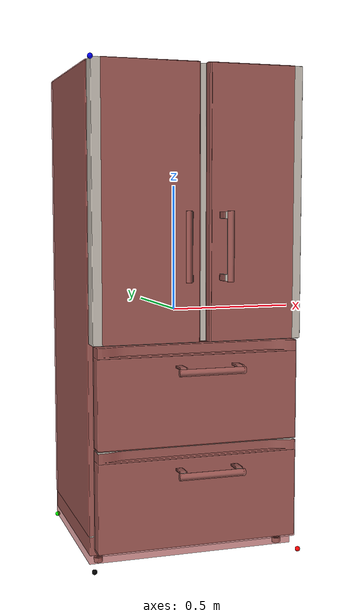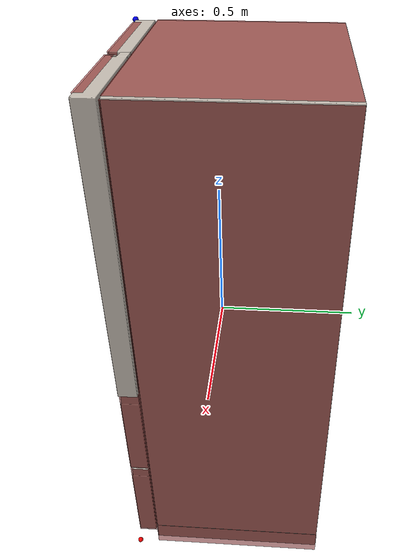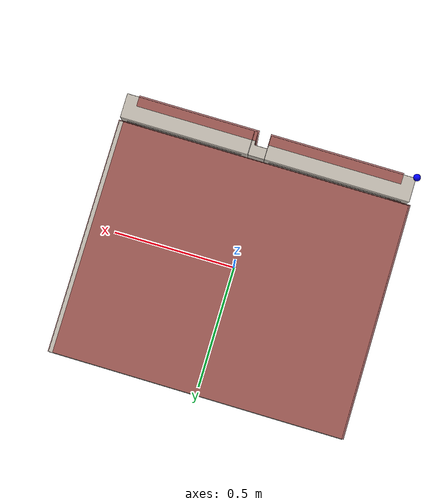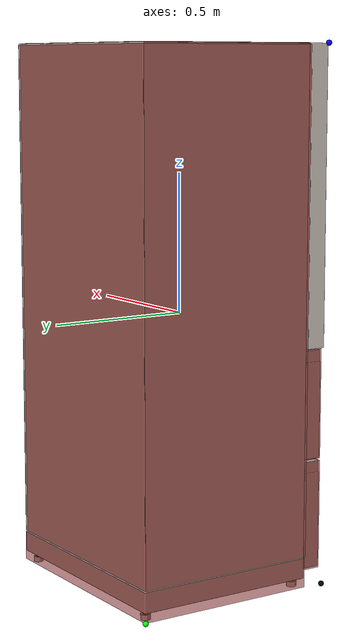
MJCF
<?xml version="1.0" ?>
<mujoco model="model">
    <compiler angle="radian"/>
    <asset>
        <mesh file="visuals/Refrigerator033_Body001.obj" name="Refrigerator033_Body001_vis"/>
        <mesh file="visuals/Refrigerator033_Body001_Clear.obj" name="Refrigerator033_Body001_Clear_vis"/>
        <mesh file="visuals/Refrigerator033_Body002.obj" name="Refrigerator033_Body002_vis"/>
        <mesh file="visuals/Refrigerator033_Door001.obj" name="Refrigerator033_Door001_vis"/>
        <mesh file="visuals/Refrigerator033_Door002.obj" name="Refrigerator033_Door002_vis"/>
        <mesh file="visuals/Refrigerator033_Drawer001.obj" name="Refrigerator033_Drawer001_vis"/>
        <mesh file="visuals/Refrigerator033_Drawer002.obj" name="Refrigerator033_Drawer002_vis"/>
        <mesh file="visuals/Refrigerator033_Drawer003.obj" name="Refrigerator033_Drawer003_vis"/>
        <mesh file="visuals/Refrigerator033_Drawer004.obj" name="Refrigerator033_Drawer004_vis"/>
        <texture file="visuals/T_Refrigerator033_BC001.png" name="Refrigerator033_Body001_material" type="2d"/>
        <material name="Refrigerator033_Body001_material" rgba="1 1 1 1.0" texture="Refrigerator033_Body001_material" shininess="0.141421377658844" specular="0.3103448502657381"/>
        <texture file="visuals/T_Refrigerator033_BC001.png" name="Refrigerator033_Body001_Clear_material" type="2d"/>
        <material name="Refrigerator033_Body001_Clear_material" rgba="1 1 1 0.20207251608371735" texture="Refrigerator033_Body001_Clear_material" shininess="0.141421377658844" specular="0.3103448502657381"/>
        <texture file="visuals/T_Refrigerator033_BC001.png" name="Refrigerator033_Body002_material" type="2d"/>
        <material name="Refrigerator033_Body002_material" rgba="1 1 1 1.0" texture="Refrigerator033_Body002_material" shininess="0.141421377658844" specular="0.3103448502657381"/>
        <texture file="visuals/T_Refrigerator033_BC001.png" name="Refrigerator033_Door001_material" type="2d"/>
        <material name="Refrigerator033_Door001_material" rgba="1 1 1 1.0" texture="Refrigerator033_Door001_material" shininess="0.141421377658844" specular="0.3103448502657381"/>
        <texture file="visuals/T_Refrigerator033_BC001.png" name="Refrigerator033_Door002_material" type="2d"/>
        <material name="Refrigerator033_Door002_material" rgba="1 1 1 1.0" texture="Refrigerator033_Door002_material" shininess="0.141421377658844" specular="0.3103448502657381"/>
        <texture file="visuals/T_Refrigerator033_BC001.png" name="Refrigerator033_Drawer001_material" type="2d"/>
        <material name="Refrigerator033_Drawer001_material" rgba="1 1 1 1.0" texture="Refrigerator033_Drawer001_material" shininess="0.141421377658844" specular="0.3103448502657381"/>
        <texture file="visuals/T_Refrigerator033_BC001.png" name="Refrigerator033_Drawer002_material" type="2d"/>
        <material name="Refrigerator033_Drawer002_material" rgba="1 1 1 1.0" texture="Refrigerator033_Drawer002_material" shininess="0.141421377658844" specular="0.3103448502657381"/>
        <texture file="visuals/T_Refrigerator033_BC001.png" name="Refrigerator033_Drawer003_material" type="2d"/>
        <material name="Refrigerator033_Drawer003_material" rgba="1 1 1 1.0" texture="Refrigerator033_Drawer003_material" shininess="0.141421377658844" specular="0.3103448502657381"/>
        <texture file="visuals/T_Refrigerator033_BC001.png" name="Refrigerator033_Drawer004_material" type="2d"/>
        <material name="Refrigerator033_Drawer004_material" rgba="1 1 1 1.0" texture="Refrigerator033_Drawer004_material" shininess="0.141421377658844" specular="0.3103448502657381"/>
    </asset>
    <default>
        <default class="visual">
            <geom conaffinity="0" contype="0" group="1" type="mesh"/>
        </default>
        <default class="collision">
            <geom group="0" rgba="0.5 0 0 0.5"/>
        </default>
        <default class="spawn">
            <geom group="0" rgba="1 1 1 0.5" contype="0" conaffinity="0"/>
            <site group="0" rgba="1 1 1 0.5"/>
        </default>
    </default>
    <worldbody>
        <body>
            <site rgba="0 0 0 1" size="0.01" pos="-0.41648948192596436 -0.3302217423915863 -0.9506131410598755" name="ext_p0"/>
            <site rgba="1 0 0 1" size="0.01" pos="0.41648948192596436 -0.3302217423915863 -0.9506131410598755" name="ext_px"/>
            <site rgba="0 1 0 1" size="0.01" pos="-0.41648948192596436 0.4099842607975006 -0.9506131410598755" name="ext_py"/>
            <site rgba="0 0 1 1" size="0.01" pos="-0.41648948192596436 -0.3302217423915863 0.9506131410598755" name="ext_pz"/>
            <body name="object">
                <geom mesh="Refrigerator033_Body001_vis" type="mesh" solimp="0.998 0.998 0.001" solref="0.001 1" density="100" friction="0.95 0.3 0.1" class="visual" material="Refrigerator033_Body001_material"/>
                <geom class="collision" type="box" pos="-0.00208108127117157 0.08072735369205475 -0.8961280584335327" size="0.4163234829902649 0.3325178325176239 0.05263948440551758" quat="1.0 0.0 0.0 0.0"/>
                <geom class="collision" type="box" pos="-0.008467383682727814 0.37079429626464844 0.05348876118659973" size="0.40993714332580566 0.04190603271126747 0.8916877508163452" quat="1.0 0.0 0.0 0.0"/>
                <geom class="collision" type="box" pos="-0.008467379957437515 0.016824204474687576 0.7318757176399231" size="0.3539907932281494 0.2809253931045532 0.008237498812377453" quat="1.0 0.0 0.0 0.0"/>
                <geom class="collision" type="box" pos="-0.008467379957437515 0.016824204474687576 0.6156821846961975" size="0.3539907932281494 0.2809253931045532 0.008237498812377453" quat="1.0 0.0 0.0 0.0"/>
                <geom class="collision" type="box" pos="-0.008467379957437515 0.01875067502260208 0.40737712383270264" size="0.3539907932281494 0.2809253931045532 0.008237498812377453" quat="1.0 0.0 0.0 0.0"/>
                <geom class="collision" type="box" pos="-0.008467383682727814 0.09484294801950455 0.23109208047389984" size="0.3539907932281494 0.24376235902309418 0.008237498812377453" quat="1.0 0.0 0.0 0.0"/>
                <geom class="collision" type="box" pos="-0.008467389270663261 0.14303885400295258 -0.08113579452037811" size="0.3539907932281494 0.26747578382492065 0.032296132296323776" quat="1.0 0.0 0.0 0.0"/>
                <geom class="collision" type="box" pos="-0.38870692253112793 0.07920320332050323 0.053488731384277344" size="0.032695408910512924 0.3322145938873291 0.89168781042099" quat="1.0 0.0 0.0 0.0"/>
                <geom class="collision" type="box" pos="0.3831474483013153 0.079389289021492 0.053488731384277344" size="0.03241534158587456 0.33202850818634033 0.89168781042099" quat="1.0 0.0 0.0 0.0"/>
                <geom class="collision" type="box" pos="-0.0038441189099103212 0.08783414959907532 0.4449489116668701" size="0.0200817734003067 0.3235836625099182 0.5002276301383972" quat="1.0 0.0 0.0 0.0"/>
                <geom class="collision" type="box" pos="-0.008467378094792366 0.0799221396446228 0.9239232540130615" size="0.40993714332580566 0.3305925130844116 0.027449237182736397" quat="1.0 0.0 0.0 0.0"/>
                <geom class="collision" type="box" pos="-0.008467383682727814 -0.1735897958278656 0.2095966637134552" size="0.3539907932281494 0.036297693848609924 0.008237498812377453" quat="0.9520677924156189 0.3058871328830719 0.0 0.0"/>
                <geom class="collision" type="box" pos="-0.008467383682727814 0.08136413991451263 0.19076384603977203" size="0.3539907932281494 0.2572411596775055 0.017921723425388336" quat="1.0 0.0 0.0 0.0"/>
                <geom class="collision" type="box" pos="-0.008467379957437515 0.01875067502260208 0.6012089848518372" size="0.04007716104388237 0.28091710805892944 0.00823723990470171" quat="1.0 0.0 0.0 0.0"/>
                <geom class="collision" type="box" pos="-0.008467379957437515 0.01875067502260208 0.7156364321708679" size="0.04007723554968834 0.280917763710022 0.008237260393798351" quat="1.0 0.0 0.0 0.0"/>
                <geom class="collision" type="box" pos="-0.34602850675582886 0.046809688210487366 0.7156364321708679" size="0.010963814333081245 0.2809253931045532 0.008237498812377453" quat="1.0 0.0 0.0 0.0"/>
                <geom class="collision" type="box" pos="-0.34602850675582886 0.046809688210487366 0.6009508371353149" size="0.010963814333081245 0.2809253931045532 0.008237498812377453" quat="1.0 0.0 0.0 0.0"/>
                <geom class="collision" type="box" pos="-0.34602850675582886 0.046809688210487366 0.3911812901496887" size="0.010963814333081245 0.2809253931045532 0.008237498812377453" quat="1.0 0.0 0.0 0.0"/>
                <geom class="collision" type="box" pos="0.3365817666053772 0.046809688210487366 0.7156364321708679" size="0.010963814333081245 0.2809253931045532 0.008237498812377453" quat="1.0 0.0 0.0 0.0"/>
                <geom class="collision" type="box" pos="0.3365817666053772 0.046809688210487366 0.6009508371353149" size="0.010963814333081245 0.2809253931045532 0.008237498812377453" quat="1.0 0.0 0.0 0.0"/>
                <geom class="collision" type="box" pos="0.3365817666053772 0.046809688210487366 0.3911812901496887" size="0.010963814333081245 0.2809253931045532 0.008237498812377453" quat="1.0 0.0 0.0 0.0"/>
                <geom class="collision" type="box" pos="-0.008467379957437515 0.01875067502260208 0.39031657576560974" size="0.040077753365039825 0.2809223532676697 0.008237403817474842" quat="1.0 0.0 0.0 0.0"/>
                <geom class="collision" type="box" pos="-0.008467379957437515 0.029944101348519325 -0.0810936987400055" size="0.3686636686325073 0.2809253931045532 0.024825863540172577" quat="1.0 0.0 0.0 0.0"/>
                <body name="Refrigerator033_Body001_Clear">
                    <geom mesh="Refrigerator033_Body001_Clear_vis" type="mesh" solimp="0.998 0.998 0.001" solref="0.001 1" density="100" friction="0.95 0.3 0.1" class="visual" material="Refrigerator033_Body001_Clear_material"/>
                </body>
                <body name="Refrigerator033_Body002">
                    <geom mesh="Refrigerator033_Body002_vis" type="mesh" solimp="0.998 0.998 0.001" solref="0.001 1" density="100" friction="0.95 0.3 0.1" class="visual" material="Refrigerator033_Body002_material"/>
                </body>
                <body name="Refrigerator033_Door001">
                    <joint axis="0.0 0.0 1.0" pos="0.38031667470932007 -0.29779359698295593 0.42703258991241455" limited="true" name="Refrigerator033_Door001_joint" range="0.0 1.5707963267948966" type="hinge" damping="1" frictionloss="1" armature=".01" stiffness="0.05"/>
                    <geom mesh="Refrigerator033_Door001_vis" type="mesh" solimp="0.998 0.998 0.001" solref="0.001 1" density="100" friction="0.95 0.3 0.1" class="visual" material="Refrigerator033_Door001_material"/>
                    <geom class="collision" type="box" pos="0.20686829090118408 -0.31674689054489136 0.42834436893463135" size="0.1728004515171051 0.015148164704442024 0.5224586129188538" quat="1.0 0.0 0.0 0.0"/>
                    <geom class="collision" type="box" pos="0.08263462781906128 -0.3514144718647003 0.3858376741409302" size="0.004676217213273048 0.03463103622198105 0.012289422564208508" quat="1.0 0.0 0.0 0.0"/>
                    <geom class="collision" type="box" pos="0.08263462781906128 -0.3514144718647003 0.15110839903354645" size="0.004676217213273048 0.03463103622198105 0.012289422564208508" quat="1.0 0.0 0.0 0.0"/>
                    <geom class="collision" type="cylinder" pos="0.0981806293129921 -0.3977900743484497 0.2688939571380615" size="0.013072801753878593 0.13244543969631195" quat="1.0 0.0 0.0 0.0"/>
                </body>
                <body name="Refrigerator033_Door002">
                    <joint axis="0.0 0.0 -1.0" pos="-0.3791999816894531 -0.297992080450058 0.4270331859588623" limited="true" name="Refrigerator033_Door002_joint" range="0.0 1.5707963267948966" type="hinge" damping="1" frictionloss="1" armature=".01" stiffness="0.05"/>
                    <geom mesh="Refrigerator033_Door002_vis" type="mesh" solimp="0.998 0.998 0.001" solref="0.001 1" density="100" friction="0.95 0.3 0.1" class="visual" material="Refrigerator033_Door002_material"/>
                    <geom class="collision" type="box" pos="-0.1892462968826294 -0.3163755536079407 0.4283443093299866" size="0.18988600373268127 0.015519666485488415 0.5224586129188538" quat="1.0 0.0 0.0 0.0"/>
                    <geom class="collision" type="box" pos="-0.04864192008972168 -0.3514144718647003 0.3858376741409302" size="0.004676217213273048 0.03463103622198105 0.012289422564208508" quat="1.0 0.0 0.0 0.0"/>
                    <geom class="collision" type="box" pos="-0.04864192008972168 -0.3514144718647003 0.15136994421482086" size="0.004676217213273048 0.03463103622198105 0.012289422564208508" quat="1.0 0.0 0.0 0.0"/>
                    <geom class="collision" type="cylinder" pos="-0.06515726447105408 -0.3977900743484497 0.2688939571380615" size="0.012072807177901268 0.13244543969631195" quat="1.0 0.0 0.0 0.0"/>
                    <geom class="collision" type="box" pos="-0.19307315349578857 -0.2247045785188675 0.802829384803772" size="0.1563696563243866 0.030043376609683037 0.034900106489658356" quat="1.0 0.0 0.0 0.0"/>
                    <geom class="collision" type="box" pos="-0.19307315349578857 -0.2247045785188675 0.47840675711631775" size="0.15637002885341644 0.03004341572523117 0.034900158643722534" quat="1.0 0.0 0.0 0.0"/>
                </body>
                <body name="Refrigerator033_Drawer001">
                    <joint axis="0.0 -1.0 0.0" pos="0.0007692771032452583 -0.06064990162849426 -0.29845720529556274" limited="true" name="Refrigerator033_Drawer001_joint" range="0.0 0.3" type="slide" damping="1" frictionloss="1" armature=".01" stiffness="0.05"/>
                    <geom mesh="Refrigerator033_Drawer001_vis" type="mesh" solimp="0.998 0.998 0.001" solref="0.001 1" density="100" friction="0.95 0.3 0.1" class="visual" material="Refrigerator033_Drawer001_material"/>
                    <geom class="collision" type="box" pos="0.00015743178664706647 -0.2934815585613251 -0.29798445105552673" size="0.4006064236164093 0.03555590286850929 0.1959410458803177" quat="1.0 0.0 0.0 0.0"/>
                    <geom class="collision" type="box" pos="0.33090680837631226 0.00644485279917717 -0.33054229617118835" size="0.009062767028808594 0.2609739601612091 0.10751214623451233" quat="1.0 0.0 0.0 0.0"/>
                    <geom class="collision" type="box" pos="-0.3296831250190735 -0.0010572413448244333 -0.33054229617118835" size="0.009062767028808594 0.25982287526130676 0.10751214623451233" quat="1.0 0.0 0.0 0.0"/>
                    <geom class="collision" type="box" pos="0.008109457790851593 0.005545452702790499 -0.4283888638019562" size="0.3094726800918579 0.26050305366516113 0.004579498898237944" quat="1.0 0.0 0.0 0.0"/>
                    <geom class="collision" type="box" pos="0.14333470165729523 -0.35915860533714294 -0.1849631369113922" size="0.013696780428290367 0.03383396938443184 0.00421290285885334" quat="1.0 0.0 0.0 0.0"/>
                    <geom class="collision" type="box" pos="-0.0828661397099495 -0.35915860533714294 -0.1849631369113922" size="0.013696780428290367 0.03383396938443184 0.00421290285885334" quat="1.0 0.0 0.0 0.0"/>
                    <geom class="collision" type="cylinder" pos="0.031228989362716675 -0.39113444089889526 -0.2003689855337143" size="0.01358901895582676 0.1311779022216797" quat="0.7071068286895752 -0.0 0.7071067690849304 0.0"/>
                    <geom class="collision" type="box" pos="0.004416104406118393 0.27410802245140076 -0.33054229617118835" size="0.320508748292923 0.009062724187970161 0.10751214623451233" quat="1.0 0.0 0.0 0.0"/>
                    <geom class="collision" type="box" pos="-0.001242657657712698 -0.2528001070022583 -0.24188652634620667" size="0.3243619203567505 0.0054865810088813305 0.017762016505002975" quat="1.0 0.0 0.0 0.0"/>
                </body>
                <body name="Refrigerator033_Drawer002">
                    <joint axis="0.0 -1.0 0.0" pos="0.0007692771032452583 -0.06064990162849426 -0.6953182220458984" limited="true" name="Refrigerator033_Drawer002_joint" range="0.0 0.3" type="slide" damping="1" frictionloss="1" armature=".01" stiffness="0.05"/>
                    <geom mesh="Refrigerator033_Drawer002_vis" type="mesh" solimp="0.998 0.998 0.001" solref="0.001 1" density="100" friction="0.95 0.3 0.1" class="visual" material="Refrigerator033_Drawer002_material"/>
                    <geom class="collision" type="box" pos="0.329494833946228 0.0013529476709663868 -0.7225852012634277" size="0.008338158018887043 0.26001212000846863 0.10198554396629333" quat="1.0 0.0 0.0 0.0"/>
                    <geom class="collision" type="box" pos="-0.329394668340683 0.0027760532684624195 -0.7246100306510925" size="0.008463632315397263 0.26276084780693054 0.10351385176181793" quat="1.0 0.0 0.0 0.0"/>
                    <geom class="collision" type="box" pos="0.0001845196820795536 0.0075332364067435265 -0.8260484933853149" size="0.32906466722488403 0.26628294587135315 0.004322757478803396" quat="1.0 0.0 0.0 0.0"/>
                    <geom class="collision" type="box" pos="0.14199252426624298 -0.351383775472641 -0.581786572933197" size="0.013696780428290367 0.03383396938443184 0.00421290285885334" quat="1.0 0.0 0.0 0.0"/>
                    <geom class="collision" type="box" pos="-0.08300895988941193 -0.351383775472641 -0.581786572933197" size="0.013696780428290367 0.03383396938443184 0.00421290285885334" quat="1.0 0.0 0.0 0.0"/>
                    <geom class="collision" type="cylinder" pos="0.031228989362716675 -0.39113444089889526 -0.5969080924987793" size="0.01358901895582676 0.1311779022216797" quat="0.7071068286895752 -0.0 0.7071067690849304 0.0"/>
                    <geom class="collision" type="box" pos="-0.001242657657712698 0.27157437801361084 -0.7190272212028503" size="0.32435762882232666 0.0054864585399627686 0.09819141775369644" quat="1.0 0.0 0.0 0.0"/>
                    <geom class="collision" type="box" pos="0.00015743178664706647 -0.2934815585613251 -0.697505533695221" size="0.4006064236164093 0.03555590286850929 0.1959410458803177" quat="1.0 0.0 0.0 0.0"/>
                    <geom class="collision" type="box" pos="-0.001242657657712698 -0.2528001070022583 -0.6380019187927246" size="0.32436129450798035 0.00548657076433301 0.017762016505002975" quat="1.0 0.0 0.0 0.0"/>
                </body>
                <body name="Refrigerator033_Drawer003">
                    <joint axis="0.0 -1.0 0.0" pos="-0.1845870316028595 5.893409252166748e-05 0.049359142780303955" limited="true" name="Refrigerator033_Drawer003_joint" range="0.0 0.3" type="slide" damping="1" frictionloss="1" armature=".01" stiffness="0.05"/>
                    <geom mesh="Refrigerator033_Drawer003_vis" type="mesh" solimp="0.998 0.998 0.001" solref="0.001 1" density="100" friction="0.95 0.3 0.1" class="visual" material="Refrigerator033_Drawer003_material"/>
                    <geom class="collision" type="box" pos="-0.1789848804473877 -0.16374415159225464 0.006403379142284393" size="0.14287613332271576 0.018393244594335556 0.046824581921100616" quat="1.0 0.0 0.0 0.0"/>
                    <geom class="collision" type="box" pos="-0.1767464280128479 0.16093403100967407 0.05077322944998741" size="0.13721756637096405 0.003487263573333621 0.08920848369598389" quat="1.0 0.0 0.0 0.0"/>
                    <geom class="collision" type="box" pos="-0.037802815437316895 0.011394932866096497 0.0507732592523098" size="0.009062749333679676 0.15588098764419556 0.08920847624540329" quat="1.0 0.0 0.0 0.0"/>
                    <geom class="collision" type="box" pos="-0.3217843472957611 0.011394955217838287 0.05077327415347099" size="0.009062747471034527 0.15588097274303436 0.08920848369598389" quat="1.0 0.0 0.0 0.0"/>
                    <geom class="collision" type="box" pos="-0.1767464280128479 -0.0036468282341957092 -0.03566092252731323" size="0.13721756637096405 0.16969113051891327 0.004579473752528429" quat="1.0 0.0 0.0 0.0"/>
                    <geom class="collision" type="box" pos="-0.17898491024971008 -0.15335553884506226 0.126534104347229" size="0.14287614822387695 0.01033714972436428 0.012092240154743195" quat="1.0 0.0 0.0 0.0"/>
                    <geom class="collision" type="box" pos="-0.1789848804473877 -0.14808031916618347 0.08019638061523438" size="0.14287613332271576 0.01033715158700943 0.03989255800843239" quat="0.9453846216201782 -0.32595694065093994 7.237698010940984e-17 -1.6096955755257956e-25"/>
                    <geom class="collision" type="box" pos="-0.1767464280128479 0.17903143167495728 0.12726733088493347" size="0.1372227817773819 0.003487263573333621 0.011838637292385101" quat="1.0 0.0 0.0 0.0"/>
                </body>
                <body name="Refrigerator033_Drawer004">
                    <joint axis="0.0 -1.0 0.0" pos="0.17834961414337158 5.8084726333618164e-05 0.04935950040817261" limited="true" name="Refrigerator033_Drawer004_joint" range="0.0 0.3" type="slide" damping="1" frictionloss="1" armature=".01" stiffness="0.05"/>
                    <geom mesh="Refrigerator033_Drawer004_vis" type="mesh" solimp="0.998 0.998 0.001" solref="0.001 1" density="100" friction="0.95 0.3 0.1" class="visual" material="Refrigerator033_Drawer004_material"/>
                    <geom class="collision" type="box" pos="0.1726653277873993 -0.16374415159225464 0.006403379142284393" size="0.15167485177516937 0.018393244594335556 0.046824581921100616" quat="1.0 0.0 0.0 0.0"/>
                    <geom class="collision" type="box" pos="0.17504164576530457 0.16426748037338257 0.05077322944998741" size="0.14566780626773834 0.003487263573333621 0.08920848369598389" quat="1.0 0.0 0.0 0.0"/>
                    <geom class="collision" type="box" pos="0.32880672812461853 0.011394932866096497 0.0507732592523098" size="0.009062749333679676 0.15588098764419556 0.08920847624540329" quat="1.0 0.0 0.0 0.0"/>
                    <geom class="collision" type="box" pos="0.029081787914037704 0.011394955217838287 0.05077327415347099" size="0.009062747471034527 0.15588097274303436 0.08920848369598389" quat="1.0 0.0 0.0 0.0"/>
                    <geom class="collision" type="box" pos="0.17504164576530457 -0.0036468282341957092 -0.03566092252731323" size="0.14566780626773834 0.16969113051891327 0.004579473752528429" quat="1.0 0.0 0.0 0.0"/>
                    <geom class="collision" type="box" pos="0.1726652979850769 -0.15335553884506226 0.126534104347229" size="0.15167486667633057 0.01033714972436428 0.012092240154743195" quat="1.0 0.0 0.0 0.0"/>
                    <geom class="collision" type="box" pos="0.1726653277873993 -0.14808031916618347 0.08019638061523438" size="0.15167485177516937 0.01033715158700943 0.03989255800843239" quat="0.9453846216201782 -0.32595694065093994 7.237698010940984e-17 -1.6096955755257956e-25"/>
                    <geom class="collision" type="box" pos="0.1714893877506256 0.17903143167495728 0.12726733088493347" size="0.14566552639007568 0.003487263573333621 0.01183825358748436" quat="1.0 0.0 0.0 0.0"/>
                </body>
            </body>
        </body>
    </worldbody>
    <actuator>
        <motor name="Refrigerator033_Door001_joint_actuator" joint="Refrigerator033_Door001_joint" gear="50"/>
        <motor name="Refrigerator033_Door002_joint_actuator" joint="Refrigerator033_Door002_joint" gear="50"/>
        <motor name="Refrigerator033_Drawer001_joint_actuator" joint="Refrigerator033_Drawer001_joint" gear="50"/>
        <motor name="Refrigerator033_Drawer002_joint_actuator" joint="Refrigerator033_Drawer002_joint" gear="50"/>
        <motor name="Refrigerator033_Drawer003_joint_actuator" joint="Refrigerator033_Drawer003_joint" gear="50"/>
        <motor name="Refrigerator033_Drawer004_joint_actuator" joint="Refrigerator033_Drawer004_joint" gear="50"/>
    </actuator>
</mujoco>
